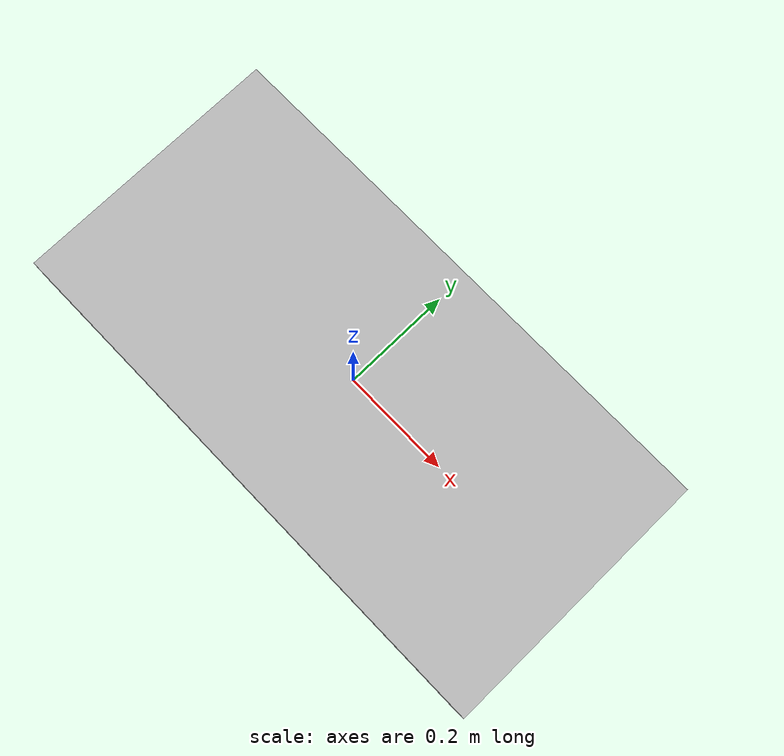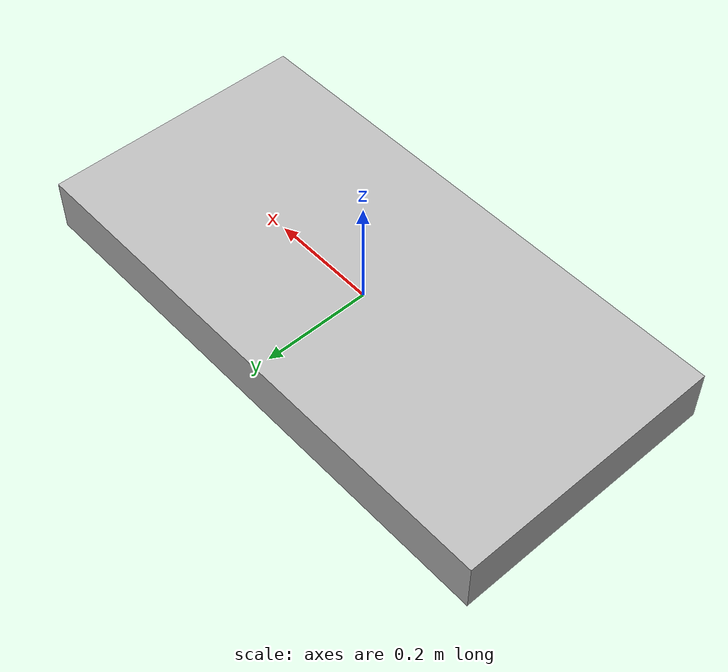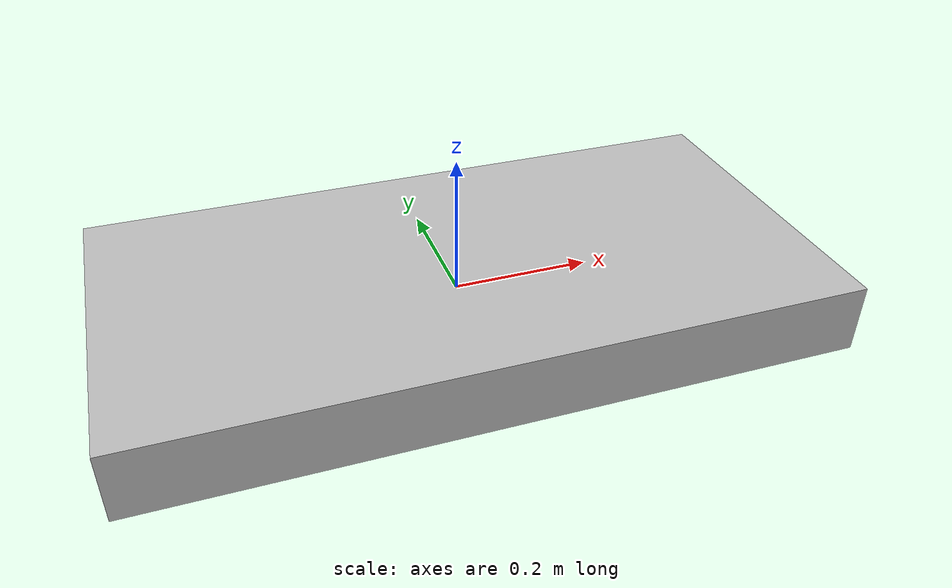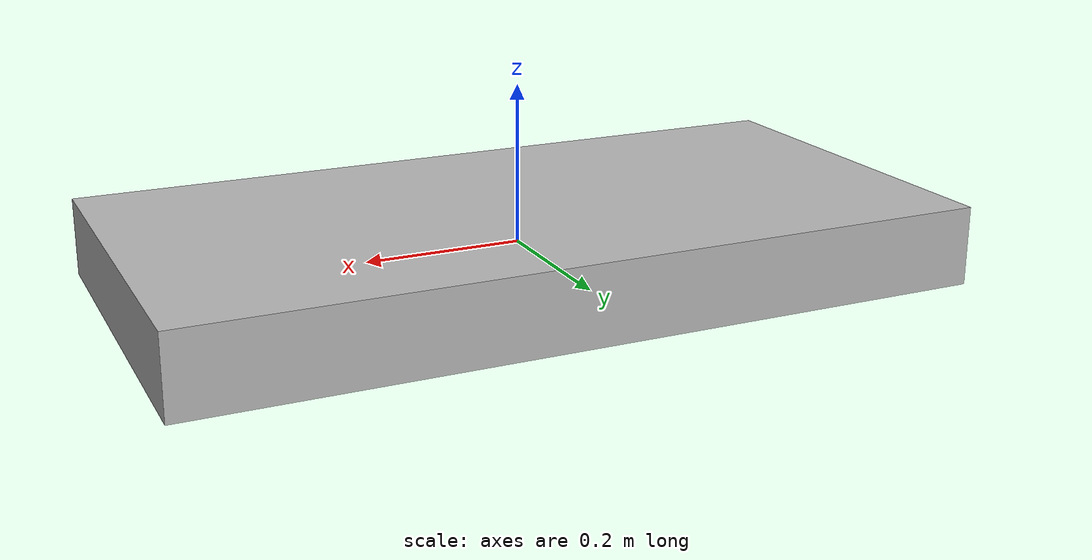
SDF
<?xml version="1.0" ?>
<sdf version="1.7">
  <world name="rotating_platform_sim">
    <physics type="ode">
      <max_step_size>0.001</max_step_size>
      <real_time_factor>1</real_time_factor>
      <real_time_update_rate>1000</real_time_update_rate>
      <gravity>0 0 -9.81</gravity>
      <ode>
        <solver>
          <type>quick</type>
          <iters>50</iters>
          <sor>1.2</sor>
        </solver>
        <constraints>
          <cfm>0</cfm>
          <erp>0.2</erp>
          <contact_max_correcting_vel>0.2</contact_max_correcting_vel>
          <contact_surface_layer>0.001</contact_surface_layer>
        </constraints>
      </ode>
    </physics>
<?xml version="1.0" ?>
<sdf version="1.7">
  <world name="rotating_platform_sim">
    <physics type="ode">
      <max_step_size>0.001</max_step_size>
      <real_time_factor>1</real_time_factor>
      <real_time_update_rate>1000</real_time_update_rate>
      <gravity>0 0 -9.81</gravity>
      <ode>
        <solver>
          <type>quick</type>
          <iters>50</iters>
          <sor>1.2</sor>
        </solver>
        <constraints>
          <cfm>0</cfm>
          <erp>0.2</erp>
          <contact_max_correcting_vel>0.2</contact_max_correcting_vel>
          <contact_surface_layer>0.001</contact_surface_layer>
        </constraints>
      </ode>
    </physics>

    <include>
      <uri>file:///home/pranjal/rotorS/src/Ark_imav23/Gazebo/rotating_platform_model</uri>
      <pose>0 0 0 0 0 0</pose>
      <plugin name="rotation_controller" filename="/home/pranjal/simulator2/src/simulator_plugins/src/build/librotation_controller.so">

      </plugin>
    </include>

    <!-- Add other models and entities to the world as needed -->
  </world>
</sdf>

    <include>
      <uri>file:///home/pranjal/rotorS/src/Ark_imav23/Gazebo/rotating_platform_model</uri>
      <pose>0 0 0 0 0 0</pose>
      <plugin name="rotation_controller" filename="/home/pranjal/simulator2/src/simulator_plugins/src/build/librotation_controller.so">

      </plugin>
    </include>

    <!-- Add other models and entities to the world as needed -->
  </world>
</sdf>

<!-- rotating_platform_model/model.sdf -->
<sdf version="1.7">
  <model name="rotating_platform">

    <link name="platform_link">
      <inertial>
        <mass>0.25</mass>
        <inertia>
          <ixx>0.1</ixx>
          <iyy>0.1</iyy>
          <izz>0.1</izz>
        </inertia>
      </inertial>
      <collision name="platform_collision">
        <!-- Define collision properties -->
        <geometry>
          <box>
            <size>1 0.5 0.1</size>
          </box>
        </geometry>
      </collision>
      <visual name="platform_visual">
        <!-- Define visual properties -->
        <geometry>
          <box>
            <size>1 0.5 0.1</size>
          </box>
        </geometry>
      </visual>
    </link>

    <joint name="rotation_joint" type="continuous">
      <child>platform_link</child>
      <parent>world</parent>
      <axis>
        <xyz>0 0 1</xyz>
      </axis>
      <dynamics>
        <damping>0.1</damping>
        <friction>0.05</friction>
      </dynamics>

      <motor>
        <force>
            <torque>
                <limit>
                    <lower>-10</lower>
                    <upper>10</upper>
                </limit>
            </torque>
        </force>
        <velocity>
            <target>0.174533</target>
            <pid>
                <p>100.0</p>
                <i>0.2</i>
                <d>0.2</d>
                <imax>1.0</imax>
                <imin>-1.0</imin>
            </pid>
            <limit>
                <lower>-10.0</lower>
                <upper>10.0</upper>
                <effort>10.0</effort>
            </limit>
        </velocity>
      </motor>

    </joint>
  </model>
</sdf>
